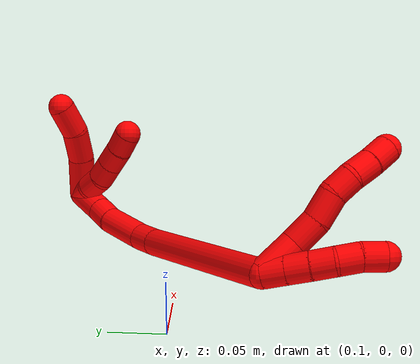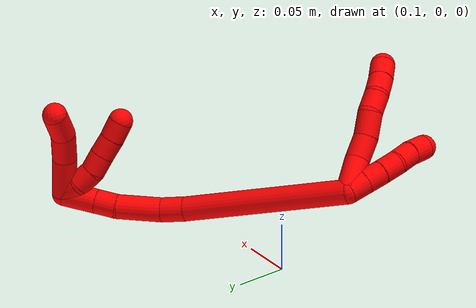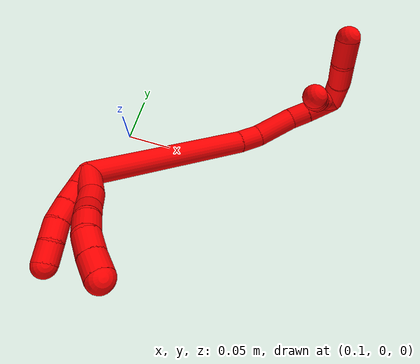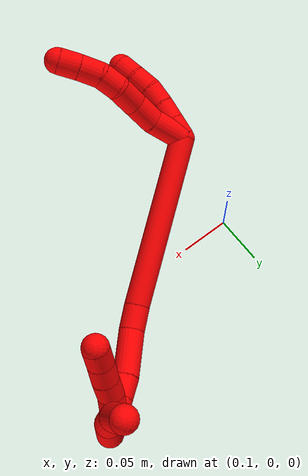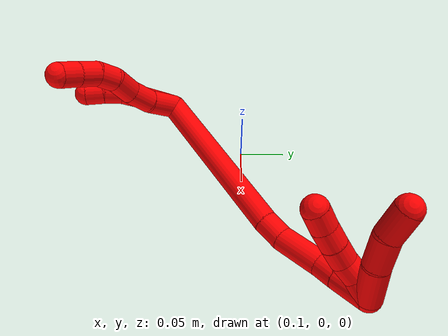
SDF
<sdf version="1.7">
 <world name="default">
  <model name="2">
   <static>0</static>
   <link name="2">
    <collision name="collision-cylinder-e_1_2_8">
     <pose>-0.013124 -0.003082 -0.011823 2.88658 -0.821136 -2.56878</pose>
     <geometry><cylinder><radius>0.0125</radius><length>0.035863</length></cylinder></geometry>
     <surface>
      <friction><ode><mu>1.16</mu><mu2>1.16</mu2><slip1>0</slip1><slip2>0</slip2></ode></friction>
      <contact><ode><kp>1e+06</kp><kd>1</kd><max_vel>0</max_vel><min_depth>0.001</min_depth></ode></contact>
     </surface>
    </collision>
    <visual name="visual-cylinder-e_1_2_8">
     <pose>-0.013124 -0.003082 -0.011823 2.88658 -0.821136 -2.56878</pose>
     <geometry><cylinder><radius>0.0125</radius><length>0.035863</length></cylinder></geometry>
     <material><ambient>1 0 0 1</ambient></material>
    </visual>
    <collision name="collision-cylinder-e_2_8_9">
     <pose>-0.034024 -0.010801 -0.032829 2.67398 -0.647204 -1.90665</pose>
     <geometry><cylinder><radius>0.0125</radius><length>0.025789</length></cylinder></geometry>
     <surface>
      <friction><ode><mu>1.16</mu><mu2>1.16</mu2><slip1>0</slip1><slip2>0</slip2></ode></friction>
      <contact><ode><kp>1e+06</kp><kd>1</kd><max_vel>0</max_vel><min_depth>0.001</min_depth></ode></contact>
     </surface>
    </collision>
    <visual name="visual-cylinder-e_2_8_9">
     <pose>-0.034024 -0.010801 -0.032829 2.67398 -0.647204 -1.90665</pose>
     <geometry><cylinder><radius>0.0125</radius><length>0.025789</length></cylinder></geometry>
     <material><ambient>1 0 0 1</ambient></material>
    </visual>
    <collision name="collision-cylinder-e_3_9_10">
     <pose>-0.047352 -0.019079 -0.052987 2.8213 -0.447727 -1.90748</pose>
     <geometry><cylinder><radius>0.0125</radius><length>0.025655</length></cylinder></geometry>
     <surface>
      <friction><ode><mu>1.16</mu><mu2>1.16</mu2><slip1>0</slip1><slip2>0</slip2></ode></friction>
      <contact><ode><kp>1e+06</kp><kd>1</kd><max_vel>0</max_vel><min_depth>0.001</min_depth></ode></contact>
     </surface>
    </collision>
    <visual name="visual-cylinder-e_3_9_10">
     <pose>-0.047352 -0.019079 -0.052987 2.8213 -0.447727 -1.90748</pose>
     <geometry><cylinder><radius>0.0125</radius><length>0.025655</length></cylinder></geometry>
     <material><ambient>1 0 0 1</ambient></material>
    </visual>
    <collision name="collision-cylinder-e_4_10_11">
     <pose>-0.059998 -0.025435 -0.070699 2.75838 -0.773528 -2.25258</pose>
     <geometry><cylinder><radius>0.0125</radius><length>0.020305</length></cylinder></geometry>
     <surface>
      <friction><ode><mu>1.16</mu><mu2>1.16</mu2><slip1>0</slip1><slip2>0</slip2></ode></friction>
      <contact><ode><kp>1e+06</kp><kd>1</kd><max_vel>0</max_vel><min_depth>0.001</min_depth></ode></contact>
     </surface>
    </collision>
    <visual name="visual-cylinder-e_4_10_11">
     <pose>-0.059998 -0.025435 -0.070699 2.75838 -0.773528 -2.25258</pose>
     <geometry><cylinder><radius>0.0125</radius><length>0.020305</length></cylinder></geometry>
     <material><ambient>1 0 0 1</ambient></material>
    </visual>
    <collision name="collision-cylinder-e_5_11_12">
     <pose>-0.076306 -0.028512 -0.083138 3.07846 -1.01571 -3.02824</pose>
     <geometry><cylinder><radius>0.0125</radius><length>0.021685</length></cylinder></geometry>
     <surface>
      <friction><ode><mu>1.16</mu><mu2>1.16</mu2><slip1>0</slip1><slip2>0</slip2></ode></friction>
      <contact><ode><kp>1e+06</kp><kd>1</kd><max_vel>0</max_vel><min_depth>0.001</min_depth></ode></contact>
     </surface>
    </collision>
    <visual name="visual-cylinder-e_5_11_12">
     <pose>-0.076306 -0.028512 -0.083138 3.07846 -1.01571 -3.02824</pose>
     <geometry><cylinder><radius>0.0125</radius><length>0.021685</length></cylinder></geometry>
     <material><ambient>1 0 0 1</ambient></material>
    </visual>
    <collision name="collision-cylinder-e_6_12_6">
     <pose>-0.094048 -0.028429 -0.094691 -3.06603 -0.968168 2.99807</pose>
     <geometry><cylinder><radius>0.0125</radius><length>0.020703</length></cylinder></geometry>
     <surface>
      <friction><ode><mu>1.16</mu><mu2>1.16</mu2><slip1>0</slip1><slip2>0</slip2></ode></friction>
      <contact><ode><kp>1e+06</kp><kd>1</kd><max_vel>0</max_vel><min_depth>0.001</min_depth></ode></contact>
     </surface>
    </collision>
    <visual name="visual-cylinder-e_6_12_6">
     <pose>-0.094048 -0.028429 -0.094691 -3.06603 -0.968168 2.99807</pose>
     <geometry><cylinder><radius>0.0125</radius><length>0.020703</length></cylinder></geometry>
     <material><ambient>1 0 0 1</ambient></material>
    </visual>
    <collision name="collision-cylinder-e_1_2_13">
     <pose>-0.007296 -0.006616 -0.001729 1.82633 -0.817768 -1.02257</pose>
     <geometry><cylinder><radius>0.0125</radius><length>0.02</length></cylinder></geometry>
     <surface>
      <friction><ode><mu>1.16</mu><mu2>1.16</mu2><slip1>0</slip1><slip2>0</slip2></ode></friction>
      <contact><ode><kp>1e+06</kp><kd>1</kd><max_vel>0</max_vel><min_depth>0.001</min_depth></ode></contact>
     </surface>
    </collision>
    <visual name="visual-cylinder-e_1_2_13">
     <pose>-0.007296 -0.006616 -0.001729 1.82633 -0.817768 -1.02257</pose>
     <geometry><cylinder><radius>0.0125</radius><length>0.02</length></cylinder></geometry>
     <material><ambient>1 0 0 1</ambient></material>
    </visual>
    <collision name="collision-cylinder-e_2_13_14">
     <pose>-0.021898 -0.019849 -0.005148 1.821 -0.81908 -1.01941</pose>
     <geometry><cylinder><radius>0.0125</radius><length>0.02</length></cylinder></geometry>
     <surface>
      <friction><ode><mu>1.16</mu><mu2>1.16</mu2><slip1>0</slip1><slip2>0</slip2></ode></friction>
      <contact><ode><kp>1e+06</kp><kd>1</kd><max_vel>0</max_vel><min_depth>0.001</min_depth></ode></contact>
     </surface>
    </collision>
    <visual name="visual-cylinder-e_2_13_14">
     <pose>-0.021898 -0.019849 -0.005148 1.821 -0.81908 -1.01941</pose>
     <geometry><cylinder><radius>0.0125</radius><length>0.02</length></cylinder></geometry>
     <material><ambient>1 0 0 1</ambient></material>
    </visual>
    <collision name="collision-cylinder-e_3_14_15">
     <pose>-0.036888 -0.032598 -0.008666 1.86042 -0.876465 -1.12242</pose>
     <geometry><cylinder><radius>0.0125</radius><length>0.02</length></cylinder></geometry>
     <surface>
      <friction><ode><mu>1.16</mu><mu2>1.16</mu2><slip1>0</slip1><slip2>0</slip2></ode></friction>
      <contact><ode><kp>1e+06</kp><kd>1</kd><max_vel>0</max_vel><min_depth>0.001</min_depth></ode></contact>
     </surface>
    </collision>
    <visual name="visual-cylinder-e_3_14_15">
     <pose>-0.036888 -0.032598 -0.008666 1.86042 -0.876465 -1.12242</pose>
     <geometry><cylinder><radius>0.0125</radius><length>0.02</length></cylinder></geometry>
     <material><ambient>1 0 0 1</ambient></material>
    </visual>
    <collision name="collision-cylinder-e_4_15_16">
     <pose>-0.053533 -0.042839 -0.012172 1.95851 -1.11089 -1.49165</pose>
     <geometry><cylinder><radius>0.0125</radius><length>0.02</length></cylinder></geometry>
     <surface>
      <friction><ode><mu>1.16</mu><mu2>1.16</mu2><slip1>0</slip1><slip2>0</slip2></ode></friction>
      <contact><ode><kp>1e+06</kp><kd>1</kd><max_vel>0</max_vel><min_depth>0.001</min_depth></ode></contact>
     </surface>
    </collision>
    <visual name="visual-cylinder-e_4_15_16">
     <pose>-0.053533 -0.042839 -0.012172 1.95851 -1.11089 -1.49165</pose>
     <geometry><cylinder><radius>0.0125</radius><length>0.02</length></cylinder></geometry>
     <material><ambient>1 0 0 1</ambient></material>
    </visual>
    <collision name="collision-cylinder-e_5_16_5">
     <pose>-0.071639 -0.050995 -0.013934 1.59153 -1.15409 -1.17312</pose>
     <geometry><cylinder><radius>0.0125</radius><length>0.02</length></cylinder></geometry>
     <surface>
      <friction><ode><mu>1.16</mu><mu2>1.16</mu2><slip1>0</slip1><slip2>0</slip2></ode></friction>
      <contact><ode><kp>1e+06</kp><kd>1</kd><max_vel>0</max_vel><min_depth>0.001</min_depth></ode></contact>
     </surface>
    </collision>
    <visual name="visual-cylinder-e_5_16_5">
     <pose>-0.071639 -0.050995 -0.013934 1.59153 -1.15409 -1.17312</pose>
     <geometry><cylinder><radius>0.0125</radius><length>0.02</length></cylinder></geometry>
     <material><ambient>1 0 0 1</ambient></material>
    </visual>
    <collision name="collision-cylinder-e_1_2_17">
     <pose>0.005685 0.086067 -0.010018 -1.68667 0.065521 -0.073583</pose>
     <geometry><cylinder><radius>0.0125</radius><length>0.173668</length></cylinder></geometry>
     <surface>
      <friction><ode><mu>1.16</mu><mu2>1.16</mu2><slip1>0</slip1><slip2>0</slip2></ode></friction>
      <contact><ode><kp>1e+06</kp><kd>1</kd><max_vel>0</max_vel><min_depth>0.001</min_depth></ode></contact>
     </surface>
    </collision>
    <visual name="visual-cylinder-e_1_2_17">
     <pose>0.005685 0.086067 -0.010018 -1.68667 0.065521 -0.073583</pose>
     <geometry><cylinder><radius>0.0125</radius><length>0.173668</length></cylinder></geometry>
     <material><ambient>1 0 0 1</ambient></material>
    </visual>
    <collision name="collision-cylinder-e_2_17_18">
     <pose>0.013256 0.184172 -0.022425 -1.76675 0.152375 -0.185421</pose>
     <geometry><cylinder><radius>0.0125</radius><length>0.024834</length></cylinder></geometry>
     <surface>
      <friction><ode><mu>1.16</mu><mu2>1.16</mu2><slip1>0</slip1><slip2>0</slip2></ode></friction>
      <contact><ode><kp>1e+06</kp><kd>1</kd><max_vel>0</max_vel><min_depth>0.001</min_depth></ode></contact>
     </surface>
    </collision>
    <visual name="visual-cylinder-e_2_17_18">
     <pose>0.013256 0.184172 -0.022425 -1.76675 0.152375 -0.185421</pose>
     <geometry><cylinder><radius>0.0125</radius><length>0.024834</length></cylinder></geometry>
     <material><ambient>1 0 0 1</ambient></material>
    </visual>
    <collision name="collision-cylinder-e_3_18_19">
     <pose>0.021675 0.216712 -0.032508 -1.92983 0.290006 -0.415471</pose>
     <geometry><cylinder><radius>0.0125</radius><length>0.045704</length></cylinder></geometry>
     <surface>
      <friction><ode><mu>1.16</mu><mu2>1.16</mu2><slip1>0</slip1><slip2>0</slip2></ode></friction>
      <contact><ode><kp>1e+06</kp><kd>1</kd><max_vel>0</max_vel><min_depth>0.001</min_depth></ode></contact>
     </surface>
    </collision>
    <visual name="visual-cylinder-e_3_18_19">
     <pose>0.021675 0.216712 -0.032508 -1.92983 0.290006 -0.415471</pose>
     <geometry><cylinder><radius>0.0125</radius><length>0.045704</length></cylinder></geometry>
     <material><ambient>1 0 0 1</ambient></material>
    </visual>
    <collision name="collision-cylinder-e_4_19_20">
     <pose>0.029927 0.246611 -0.045272 -2.0655 0.159453 -0.266175</pose>
     <geometry><cylinder><radius>0.0125</radius><length>0.02163</length></cylinder></geometry>
     <surface>
      <friction><ode><mu>1.16</mu><mu2>1.16</mu2><slip1>0</slip1><slip2>0</slip2></ode></friction>
      <contact><ode><kp>1e+06</kp><kd>1</kd><max_vel>0</max_vel><min_depth>0.001</min_depth></ode></contact>
     </surface>
    </collision>
    <visual name="visual-cylinder-e_4_19_20">
     <pose>0.029927 0.246611 -0.045272 -2.0655 0.159453 -0.266175</pose>
     <geometry><cylinder><radius>0.0125</radius><length>0.02163</length></cylinder></geometry>
     <material><ambient>1 0 0 1</ambient></material>
    </visual>
    <collision name="collision-cylinder-e_5_20_1">
     <pose>0.035104 0.27066 -0.058413 -2.07434 0.203938 -0.34299</pose>
     <geometry><cylinder><radius>0.0125</radius><length>0.034164</length></cylinder></geometry>
     <surface>
      <friction><ode><mu>1.16</mu><mu2>1.16</mu2><slip1>0</slip1><slip2>0</slip2></ode></friction>
      <contact><ode><kp>1e+06</kp><kd>1</kd><max_vel>0</max_vel><min_depth>0.001</min_depth></ode></contact>
     </surface>
    </collision>
    <visual name="visual-cylinder-e_5_20_1">
     <pose>0.035104 0.27066 -0.058413 -2.07434 0.203938 -0.34299</pose>
     <geometry><cylinder><radius>0.0125</radius><length>0.034164</length></cylinder></geometry>
     <material><ambient>1 0 0 1</ambient></material>
    </visual>
    <collision name="collision-cylinder-e_1_1_21">
     <pose>0.042846 0.276583 -0.084488 2.69014 0.210853 0.863598</pose>
     <geometry><cylinder><radius>0.0125</radius><length>0.040922</length></cylinder></geometry>
     <surface>
      <friction><ode><mu>1.16</mu><mu2>1.16</mu2><slip1>0</slip1><slip2>0</slip2></ode></friction>
      <contact><ode><kp>1e+06</kp><kd>1</kd><max_vel>0</max_vel><min_depth>0.001</min_depth></ode></contact>
     </surface>
    </collision>
    <visual name="visual-cylinder-e_1_1_21">
     <pose>0.042846 0.276583 -0.084488 2.69014 0.210853 0.863598</pose>
     <geometry><cylinder><radius>0.0125</radius><length>0.040922</length></cylinder></geometry>
     <material><ambient>1 0 0 1</ambient></material>
    </visual>
    <collision name="collision-cylinder-e_2_21_22">
     <pose>0.052903 0.261325 -0.114927 2.65814 0.390087 1.35104</pose>
     <geometry><cylinder><radius>0.0125</radius><length>0.030373</length></cylinder></geometry>
     <surface>
      <friction><ode><mu>1.16</mu><mu2>1.16</mu2><slip1>0</slip1><slip2>0</slip2></ode></friction>
      <contact><ode><kp>1e+06</kp><kd>1</kd><max_vel>0</max_vel><min_depth>0.001</min_depth></ode></contact>
     </surface>
    </collision>
    <visual name="visual-cylinder-e_2_21_22">
     <pose>0.052903 0.261325 -0.114927 2.65814 0.390087 1.35104</pose>
     <geometry><cylinder><radius>0.0125</radius><length>0.030373</length></cylinder></geometry>
     <material><ambient>1 0 0 1</ambient></material>
    </visual>
    <collision name="collision-cylinder-e_3_22_4">
     <pose>0.066969 0.251355 -0.138562 2.84354 0.615865 2.2595</pose>
     <geometry><cylinder><radius>0.0125</radius><length>0.028705</length></cylinder></geometry>
     <surface>
      <friction><ode><mu>1.16</mu><mu2>1.16</mu2><slip1>0</slip1><slip2>0</slip2></ode></friction>
      <contact><ode><kp>1e+06</kp><kd>1</kd><max_vel>0</max_vel><min_depth>0.001</min_depth></ode></contact>
     </surface>
    </collision>
    <visual name="visual-cylinder-e_3_22_4">
     <pose>0.066969 0.251355 -0.138562 2.84354 0.615865 2.2595</pose>
     <geometry><cylinder><radius>0.0125</radius><length>0.028705</length></cylinder></geometry>
     <material><ambient>1 0 0 1</ambient></material>
    </visual>
    <collision name="collision-cylinder-e_1_1_23">
     <pose>0.038718 0.275755 -0.069426 1.86941 0.015437 0.020903</pose>
     <geometry><cylinder><radius>0.0125</radius><length>0.02</length></cylinder></geometry>
     <surface>
      <friction><ode><mu>1.16</mu><mu2>1.16</mu2><slip1>0</slip1><slip2>0</slip2></ode></friction>
      <contact><ode><kp>1e+06</kp><kd>1</kd><max_vel>0</max_vel><min_depth>0.001</min_depth></ode></contact>
     </surface>
    </collision>
    <visual name="visual-cylinder-e_1_1_23">
     <pose>0.038718 0.275755 -0.069426 1.86941 0.015437 0.020903</pose>
     <geometry><cylinder><radius>0.0125</radius><length>0.02</length></cylinder></geometry>
     <material><ambient>1 0 0 1</ambient></material>
    </visual>
    <collision name="collision-cylinder-e_2_23_24">
     <pose>0.03644 0.25757 -0.076799 2.04523 -0.245612 -0.398904</pose>
     <geometry><cylinder><radius>0.0125</radius><length>0.02</length></cylinder></geometry>
     <surface>
      <friction><ode><mu>1.16</mu><mu2>1.16</mu2><slip1>0</slip1><slip2>0</slip2></ode></friction>
      <contact><ode><kp>1e+06</kp><kd>1</kd><max_vel>0</max_vel><min_depth>0.001</min_depth></ode></contact>
     </surface>
    </collision>
    <visual name="visual-cylinder-e_2_23_24">
     <pose>0.03644 0.25757 -0.076799 2.04523 -0.245612 -0.398904</pose>
     <geometry><cylinder><radius>0.0125</radius><length>0.02</length></cylinder></geometry>
     <material><ambient>1 0 0 1</ambient></material>
    </visual>
    <collision name="collision-cylinder-e_3_24_25">
     <pose>0.031987 0.242028 -0.088167 2.35781 -0.203639 -0.48474</pose>
     <geometry><cylinder><radius>0.0125</radius><length>0.02</length></cylinder></geometry>
     <surface>
      <friction><ode><mu>1.16</mu><mu2>1.16</mu2><slip1>0</slip1><slip2>0</slip2></ode></friction>
      <contact><ode><kp>1e+06</kp><kd>1</kd><max_vel>0</max_vel><min_depth>0.001</min_depth></ode></contact>
     </surface>
    </collision>
    <visual name="visual-cylinder-e_3_24_25">
     <pose>0.031987 0.242028 -0.088167 2.35781 -0.203639 -0.48474</pose>
     <geometry><cylinder><radius>0.0125</radius><length>0.02</length></cylinder></geometry>
     <material><ambient>1 0 0 1</ambient></material>
    </visual>
    <collision name="collision-cylinder-e_4_25_26">
     <pose>0.028263 0.227835 -0.101745 2.31047 -0.170971 -0.383634</pose>
     <geometry><cylinder><radius>0.0125</radius><length>0.02</length></cylinder></geometry>
     <surface>
      <friction><ode><mu>1.16</mu><mu2>1.16</mu2><slip1>0</slip1><slip2>0</slip2></ode></friction>
      <contact><ode><kp>1e+06</kp><kd>1</kd><max_vel>0</max_vel><min_depth>0.001</min_depth></ode></contact>
     </surface>
    </collision>
    <visual name="visual-cylinder-e_4_25_26">
     <pose>0.028263 0.227835 -0.101745 2.31047 -0.170971 -0.383634</pose>
     <geometry><cylinder><radius>0.0125</radius><length>0.02</length></cylinder></geometry>
     <material><ambient>1 0 0 1</ambient></material>
    </visual>
    <collision name="collision-cylinder-e_5_26_3">
     <pose>0.02522 0.213827 -0.115662 2.39515 -0.134586 -0.340883</pose>
     <geometry><cylinder><radius>0.0125</radius><length>0.02</length></cylinder></geometry>
     <surface>
      <friction><ode><mu>1.16</mu><mu2>1.16</mu2><slip1>0</slip1><slip2>0</slip2></ode></friction>
      <contact><ode><kp>1e+06</kp><kd>1</kd><max_vel>0</max_vel><min_depth>0.001</min_depth></ode></contact>
     </surface>
    </collision>
    <visual name="visual-cylinder-e_5_26_3">
     <pose>0.02522 0.213827 -0.115662 2.39515 -0.134586 -0.340883</pose>
     <geometry><cylinder><radius>0.0125</radius><length>0.02</length></cylinder></geometry>
     <material><ambient>1 0 0 1</ambient></material>
    </visual>
    <collision name="collision-sphere-3">
     <pose>0.023878 0.207098 -0.122937 0 -0 0</pose>
     <geometry><sphere><radius>0.0125</radius></sphere></geometry>
     <surface>
      <friction><ode><mu>1.16</mu><mu2>1.16</mu2><slip1>0</slip1><slip2>0</slip2></ode></friction>
      <contact><ode><kp>1e+06</kp><kd>1</kd><max_vel>0</max_vel><min_depth>0.001</min_depth></ode></contact>
     </surface>
    </collision>
    <visual name="visual-sphere-3">
     <pose>0.023878 0.207098 -0.122937 0 -0 0</pose>
     <geometry><sphere><radius>0.0125</radius></sphere></geometry>
     <material><ambient>1 0 0 1</ambient></material>
    </visual>
    <collision name="collision-sphere-26">
     <pose>0.026561 0.220556 -0.108387 0 -0 0</pose>
     <geometry><sphere><radius>0.0125</radius></sphere></geometry>
     <surface>
      <friction><ode><mu>1.16</mu><mu2>1.16</mu2><slip1>0</slip1><slip2>0</slip2></ode></friction>
      <contact><ode><kp>1e+06</kp><kd>1</kd><max_vel>0</max_vel><min_depth>0.001</min_depth></ode></contact>
     </surface>
    </collision>
    <visual name="visual-sphere-26">
     <pose>0.026561 0.220556 -0.108387 0 -0 0</pose>
     <geometry><sphere><radius>0.0125</radius></sphere></geometry>
     <material><ambient>1 0 0 1</ambient></material>
    </visual>
    <collision name="collision-sphere-25">
     <pose>0.029964 0.235114 -0.095103 0 -0 0</pose>
     <geometry><sphere><radius>0.0125</radius></sphere></geometry>
     <surface>
      <friction><ode><mu>1.16</mu><mu2>1.16</mu2><slip1>0</slip1><slip2>0</slip2></ode></friction>
      <contact><ode><kp>1e+06</kp><kd>1</kd><max_vel>0</max_vel><min_depth>0.001</min_depth></ode></contact>
     </surface>
    </collision>
    <visual name="visual-sphere-25">
     <pose>0.029964 0.235114 -0.095103 0 -0 0</pose>
     <geometry><sphere><radius>0.0125</radius></sphere></geometry>
     <material><ambient>1 0 0 1</ambient></material>
    </visual>
    <collision name="collision-sphere-24">
     <pose>0.034009 0.248942 -0.081231 0 -0 0</pose>
     <geometry><sphere><radius>0.0125</radius></sphere></geometry>
     <surface>
      <friction><ode><mu>1.16</mu><mu2>1.16</mu2><slip1>0</slip1><slip2>0</slip2></ode></friction>
      <contact><ode><kp>1e+06</kp><kd>1</kd><max_vel>0</max_vel><min_depth>0.001</min_depth></ode></contact>
     </surface>
    </collision>
    <visual name="visual-sphere-24">
     <pose>0.034009 0.248942 -0.081231 0 -0 0</pose>
     <geometry><sphere><radius>0.0125</radius></sphere></geometry>
     <material><ambient>1 0 0 1</ambient></material>
    </visual>
    <collision name="collision-sphere-23">
     <pose>0.038872 0.266199 -0.072368 0 -0 0</pose>
     <geometry><sphere><radius>0.0125</radius></sphere></geometry>
     <surface>
      <friction><ode><mu>1.16</mu><mu2>1.16</mu2><slip1>0</slip1><slip2>0</slip2></ode></friction>
      <contact><ode><kp>1e+06</kp><kd>1</kd><max_vel>0</max_vel><min_depth>0.001</min_depth></ode></contact>
     </surface>
    </collision>
    <visual name="visual-sphere-23">
     <pose>0.038872 0.266199 -0.072368 0 -0 0</pose>
     <geometry><sphere><radius>0.0125</radius></sphere></geometry>
     <material><ambient>1 0 0 1</ambient></material>
    </visual>
    <collision name="collision-sphere-4">
     <pose>0.07526 0.247915 -0.149761 0 -0 0</pose>
     <geometry><sphere><radius>0.0125</radius></sphere></geometry>
     <surface>
      <friction><ode><mu>1.16</mu><mu2>1.16</mu2><slip1>0</slip1><slip2>0</slip2></ode></friction>
      <contact><ode><kp>1e+06</kp><kd>1</kd><max_vel>0</max_vel><min_depth>0.001</min_depth></ode></contact>
     </surface>
    </collision>
    <visual name="visual-sphere-4">
     <pose>0.07526 0.247915 -0.149761 0 -0 0</pose>
     <geometry><sphere><radius>0.0125</radius></sphere></geometry>
     <material><ambient>1 0 0 1</ambient></material>
    </visual>
    <collision name="collision-sphere-22">
     <pose>0.058678 0.254796 -0.127363 0 -0 0</pose>
     <geometry><sphere><radius>0.0125</radius></sphere></geometry>
     <surface>
      <friction><ode><mu>1.16</mu><mu2>1.16</mu2><slip1>0</slip1><slip2>0</slip2></ode></friction>
      <contact><ode><kp>1e+06</kp><kd>1</kd><max_vel>0</max_vel><min_depth>0.001</min_depth></ode></contact>
     </surface>
    </collision>
    <visual name="visual-sphere-22">
     <pose>0.058678 0.254796 -0.127363 0 -0 0</pose>
     <geometry><sphere><radius>0.0125</radius></sphere></geometry>
     <material><ambient>1 0 0 1</ambient></material>
    </visual>
    <collision name="collision-sphere-21">
     <pose>0.047128 0.267854 -0.102491 0 -0 0</pose>
     <geometry><sphere><radius>0.0125</radius></sphere></geometry>
     <surface>
      <friction><ode><mu>1.16</mu><mu2>1.16</mu2><slip1>0</slip1><slip2>0</slip2></ode></friction>
      <contact><ode><kp>1e+06</kp><kd>1</kd><max_vel>0</max_vel><min_depth>0.001</min_depth></ode></contact>
     </surface>
    </collision>
    <visual name="visual-sphere-21">
     <pose>0.047128 0.267854 -0.102491 0 -0 0</pose>
     <geometry><sphere><radius>0.0125</radius></sphere></geometry>
     <material><ambient>1 0 0 1</ambient></material>
    </visual>
    <collision name="collision-sphere-1">
     <pose>0.038563 0.285312 -0.066485 0 -0 0</pose>
     <geometry><sphere><radius>0.0125</radius></sphere></geometry>
     <surface>
      <friction><ode><mu>1.16</mu><mu2>1.16</mu2><slip1>0</slip1><slip2>0</slip2></ode></friction>
      <contact><ode><kp>1e+06</kp><kd>1</kd><max_vel>0</max_vel><min_depth>0.001</min_depth></ode></contact>
     </surface>
    </collision>
    <visual name="visual-sphere-1">
     <pose>0.038563 0.285312 -0.066485 0 -0 0</pose>
     <geometry><sphere><radius>0.0125</radius></sphere></geometry>
     <material><ambient>1 0 0 1</ambient></material>
    </visual>
    <collision name="collision-sphere-12">
     <pose>-0.08552 -0.028872 -0.088841 0 -0 0</pose>
     <geometry><sphere><radius>0.0125</radius></sphere></geometry>
     <surface>
      <friction><ode><mu>1.16</mu><mu2>1.16</mu2><slip1>0</slip1><slip2>0</slip2></ode></friction>
      <contact><ode><kp>1e+06</kp><kd>1</kd><max_vel>0</max_vel><min_depth>0.001</min_depth></ode></contact>
     </surface>
    </collision>
    <visual name="visual-sphere-12">
     <pose>-0.08552 -0.028872 -0.088841 0 -0 0</pose>
     <geometry><sphere><radius>0.0125</radius></sphere></geometry>
     <material><ambient>1 0 0 1</ambient></material>
    </visual>
    <collision name="collision-sphere-11">
     <pose>-0.067091 -0.028151 -0.077435 0 -0 0</pose>
     <geometry><sphere><radius>0.0125</radius></sphere></geometry>
     <surface>
      <friction><ode><mu>1.16</mu><mu2>1.16</mu2><slip1>0</slip1><slip2>0</slip2></ode></friction>
      <contact><ode><kp>1e+06</kp><kd>1</kd><max_vel>0</max_vel><min_depth>0.001</min_depth></ode></contact>
     </surface>
    </collision>
    <visual name="visual-sphere-11">
     <pose>-0.067091 -0.028151 -0.077435 0 -0 0</pose>
     <geometry><sphere><radius>0.0125</radius></sphere></geometry>
     <material><ambient>1 0 0 1</ambient></material>
    </visual>
    <collision name="collision-sphere-10">
     <pose>-0.052905 -0.022719 -0.063962 0 -0 0</pose>
     <geometry><sphere><radius>0.0125</radius></sphere></geometry>
     <surface>
      <friction><ode><mu>1.16</mu><mu2>1.16</mu2><slip1>0</slip1><slip2>0</slip2></ode></friction>
      <contact><ode><kp>1e+06</kp><kd>1</kd><max_vel>0</max_vel><min_depth>0.001</min_depth></ode></contact>
     </surface>
    </collision>
    <visual name="visual-sphere-10">
     <pose>-0.052905 -0.022719 -0.063962 0 -0 0</pose>
     <geometry><sphere><radius>0.0125</radius></sphere></geometry>
     <material><ambient>1 0 0 1</ambient></material>
    </visual>
    <collision name="collision-sphere-9">
     <pose>-0.041798 -0.015438 -0.042012 0 -0 0</pose>
     <geometry><sphere><radius>0.0125</radius></sphere></geometry>
     <surface>
      <friction><ode><mu>1.16</mu><mu2>1.16</mu2><slip1>0</slip1><slip2>0</slip2></ode></friction>
      <contact><ode><kp>1e+06</kp><kd>1</kd><max_vel>0</max_vel><min_depth>0.001</min_depth></ode></contact>
     </surface>
    </collision>
    <visual name="visual-sphere-9">
     <pose>-0.041798 -0.015438 -0.042012 0 -0 0</pose>
     <geometry><sphere><radius>0.0125</radius></sphere></geometry>
     <material><ambient>1 0 0 1</ambient></material>
    </visual>
    <collision name="collision-sphere-2">
     <geometry><sphere><radius>0.0125</radius></sphere></geometry>
     <surface>
      <friction><ode><mu>1.16</mu><mu2>1.16</mu2><slip1>0</slip1><slip2>0</slip2></ode></friction>
      <contact><ode><kp>1e+06</kp><kd>1</kd><max_vel>0</max_vel><min_depth>0.001</min_depth></ode></contact>
     </surface>
    </collision>
    <visual name="visual-sphere-2">
     <geometry><sphere><radius>0.0125</radius></sphere></geometry>
     <material><ambient>1 0 0 1</ambient></material>
    </visual>
    <collision name="collision-sphere-19">
     <pose>0.02821 0.237213 -0.040202 0 -0 0</pose>
     <geometry><sphere><radius>0.0125</radius></sphere></geometry>
     <surface>
      <friction><ode><mu>1.16</mu><mu2>1.16</mu2><slip1>0</slip1><slip2>0</slip2></ode></friction>
      <contact><ode><kp>1e+06</kp><kd>1</kd><max_vel>0</max_vel><min_depth>0.001</min_depth></ode></contact>
     </surface>
    </collision>
    <visual name="visual-sphere-19">
     <pose>0.02821 0.237213 -0.040202 0 -0 0</pose>
     <geometry><sphere><radius>0.0125</radius></sphere></geometry>
     <material><ambient>1 0 0 1</ambient></material>
    </visual>
    <collision name="collision-sphere-8">
     <pose>-0.026249 -0.006164 -0.023646 0 -0 0</pose>
     <geometry><sphere><radius>0.0125</radius></sphere></geometry>
     <surface>
      <friction><ode><mu>1.16</mu><mu2>1.16</mu2><slip1>0</slip1><slip2>0</slip2></ode></friction>
      <contact><ode><kp>1e+06</kp><kd>1</kd><max_vel>0</max_vel><min_depth>0.001</min_depth></ode></contact>
     </surface>
    </collision>
    <visual name="visual-sphere-8">
     <pose>-0.026249 -0.006164 -0.023646 0 -0 0</pose>
     <geometry><sphere><radius>0.0125</radius></sphere></geometry>
     <material><ambient>1 0 0 1</ambient></material>
    </visual>
    <collision name="collision-sphere-6">
     <pose>-0.102577 -0.027986 -0.100542 0 -0 0</pose>
     <geometry><sphere><radius>0.0125</radius></sphere></geometry>
     <surface>
      <friction><ode><mu>1.16</mu><mu2>1.16</mu2><slip1>0</slip1><slip2>0</slip2></ode></friction>
      <contact><ode><kp>1e+06</kp><kd>1</kd><max_vel>0</max_vel><min_depth>0.001</min_depth></ode></contact>
     </surface>
    </collision>
    <visual name="visual-sphere-6">
     <pose>-0.102577 -0.027986 -0.100542 0 -0 0</pose>
     <geometry><sphere><radius>0.0125</radius></sphere></geometry>
     <material><ambient>1 0 0 1</ambient></material>
    </visual>
    <collision name="collision-sphere-13">
     <pose>-0.014592 -0.013233 -0.003457 0 -0 0</pose>
     <geometry><sphere><radius>0.0125</radius></sphere></geometry>
     <surface>
      <friction><ode><mu>1.16</mu><mu2>1.16</mu2><slip1>0</slip1><slip2>0</slip2></ode></friction>
      <contact><ode><kp>1e+06</kp><kd>1</kd><max_vel>0</max_vel><min_depth>0.001</min_depth></ode></contact>
     </surface>
    </collision>
    <visual name="visual-sphere-13">
     <pose>-0.014592 -0.013233 -0.003457 0 -0 0</pose>
     <geometry><sphere><radius>0.0125</radius></sphere></geometry>
     <material><ambient>1 0 0 1</ambient></material>
    </visual>
    <collision name="collision-sphere-14">
     <pose>-0.029203 -0.026465 -0.006839 0 -0 0</pose>
     <geometry><sphere><radius>0.0125</radius></sphere></geometry>
     <surface>
      <friction><ode><mu>1.16</mu><mu2>1.16</mu2><slip1>0</slip1><slip2>0</slip2></ode></friction>
      <contact><ode><kp>1e+06</kp><kd>1</kd><max_vel>0</max_vel><min_depth>0.001</min_depth></ode></contact>
     </surface>
    </collision>
    <visual name="visual-sphere-14">
     <pose>-0.029203 -0.026465 -0.006839 0 -0 0</pose>
     <geometry><sphere><radius>0.0125</radius></sphere></geometry>
     <material><ambient>1 0 0 1</ambient></material>
    </visual>
    <collision name="collision-sphere-15">
     <pose>-0.044572 -0.03873 -0.010494 0 -0 0</pose>
     <geometry><sphere><radius>0.0125</radius></sphere></geometry>
     <surface>
      <friction><ode><mu>1.16</mu><mu2>1.16</mu2><slip1>0</slip1><slip2>0</slip2></ode></friction>
      <contact><ode><kp>1e+06</kp><kd>1</kd><max_vel>0</max_vel><min_depth>0.001</min_depth></ode></contact>
     </surface>
    </collision>
    <visual name="visual-sphere-15">
     <pose>-0.044572 -0.03873 -0.010494 0 -0 0</pose>
     <geometry><sphere><radius>0.0125</radius></sphere></geometry>
     <material><ambient>1 0 0 1</ambient></material>
    </visual>
    <collision name="collision-sphere-16">
     <pose>-0.062494 -0.046948 -0.01385 0 -0 0</pose>
     <geometry><sphere><radius>0.0125</radius></sphere></geometry>
     <surface>
      <friction><ode><mu>1.16</mu><mu2>1.16</mu2><slip1>0</slip1><slip2>0</slip2></ode></friction>
      <contact><ode><kp>1e+06</kp><kd>1</kd><max_vel>0</max_vel><min_depth>0.001</min_depth></ode></contact>
     </surface>
    </collision>
    <visual name="visual-sphere-16">
     <pose>-0.062494 -0.046948 -0.01385 0 -0 0</pose>
     <geometry><sphere><radius>0.0125</radius></sphere></geometry>
     <material><ambient>1 0 0 1</ambient></material>
    </visual>
    <collision name="collision-sphere-5">
     <pose>-0.080783 -0.055042 -0.014018 0 -0 0</pose>
     <geometry><sphere><radius>0.0125</radius></sphere></geometry>
     <surface>
      <friction><ode><mu>1.16</mu><mu2>1.16</mu2><slip1>0</slip1><slip2>0</slip2></ode></friction>
      <contact><ode><kp>1e+06</kp><kd>1</kd><max_vel>0</max_vel><min_depth>0.001</min_depth></ode></contact>
     </surface>
    </collision>
    <visual name="visual-sphere-5">
     <pose>-0.080783 -0.055042 -0.014018 0 -0 0</pose>
     <geometry><sphere><radius>0.0125</radius></sphere></geometry>
     <material><ambient>1 0 0 1</ambient></material>
    </visual>
    <collision name="collision-sphere-17">
     <pose>0.011371 0.172134 -0.020035 0 -0 0</pose>
     <geometry><sphere><radius>0.0125</radius></sphere></geometry>
     <surface>
      <friction><ode><mu>1.16</mu><mu2>1.16</mu2><slip1>0</slip1><slip2>0</slip2></ode></friction>
      <contact><ode><kp>1e+06</kp><kd>1</kd><max_vel>0</max_vel><min_depth>0.001</min_depth></ode></contact>
     </surface>
    </collision>
    <visual name="visual-sphere-17">
     <pose>0.011371 0.172134 -0.020035 0 -0 0</pose>
     <geometry><sphere><radius>0.0125</radius></sphere></geometry>
     <material><ambient>1 0 0 1</ambient></material>
    </visual>
    <collision name="collision-sphere-18">
     <pose>0.01514 0.19621 -0.024814 0 -0 0</pose>
     <geometry><sphere><radius>0.0125</radius></sphere></geometry>
     <surface>
      <friction><ode><mu>1.16</mu><mu2>1.16</mu2><slip1>0</slip1><slip2>0</slip2></ode></friction>
      <contact><ode><kp>1e+06</kp><kd>1</kd><max_vel>0</max_vel><min_depth>0.001</min_depth></ode></contact>
     </surface>
    </collision>
    <visual name="visual-sphere-18">
     <pose>0.01514 0.19621 -0.024814 0 -0 0</pose>
     <geometry><sphere><radius>0.0125</radius></sphere></geometry>
     <material><ambient>1 0 0 1</ambient></material>
    </visual>
    <collision name="collision-sphere-20">
     <pose>0.031644 0.256008 -0.050341 0 -0 0</pose>
     <geometry><sphere><radius>0.0125</radius></sphere></geometry>
     <surface>
      <friction><ode><mu>1.16</mu><mu2>1.16</mu2><slip1>0</slip1><slip2>0</slip2></ode></friction>
      <contact><ode><kp>1e+06</kp><kd>1</kd><max_vel>0</max_vel><min_depth>0.001</min_depth></ode></contact>
     </surface>
    </collision>
    <visual name="visual-sphere-20">
     <pose>0.031644 0.256008 -0.050341 0 -0 0</pose>
     <geometry><sphere><radius>0.0125</radius></sphere></geometry>
     <material><ambient>1 0 0 1</ambient></material>
    </visual>
    <inertial>
     <pose>0.001921 0.118877 -0.047174 0 -0 0</pose>
     <mass>0.75</mass>
     <inertia>
      <ixx>0.000413</ixx>
      <ixy>0</ixy>
      <ixz>0</ixz>
      <iyy>-7.7e-05</iyy>
      <iyz>0</iyz>
      <izz>-0.000484</izz>
     </inertia>
    </inertial>
   </link>
   <pose>0.095927 -0.077618 0.06311 -2.73375 -0.209799 2.08887</pose>
  </model>
 </world>
</sdf>
